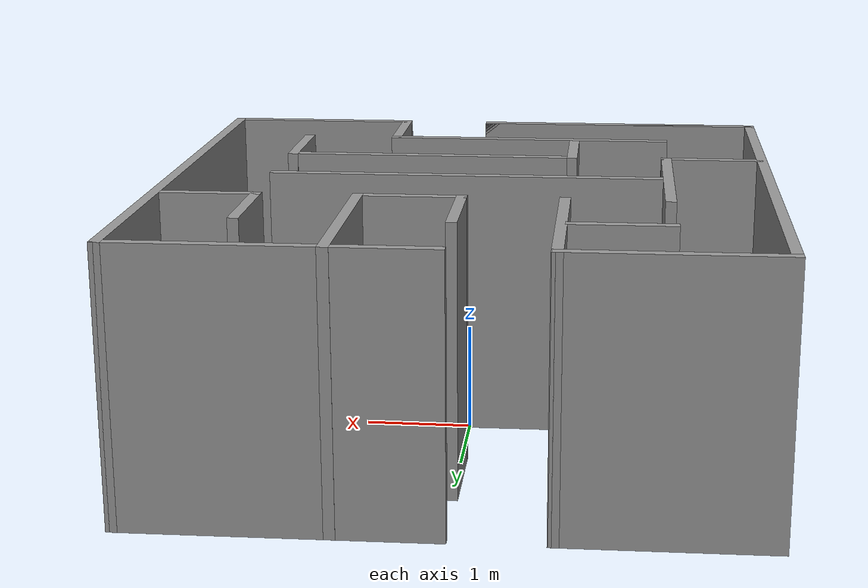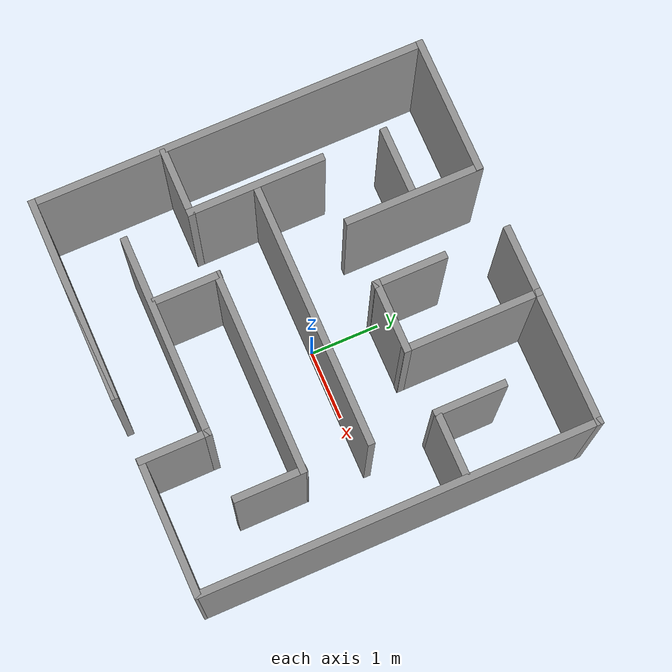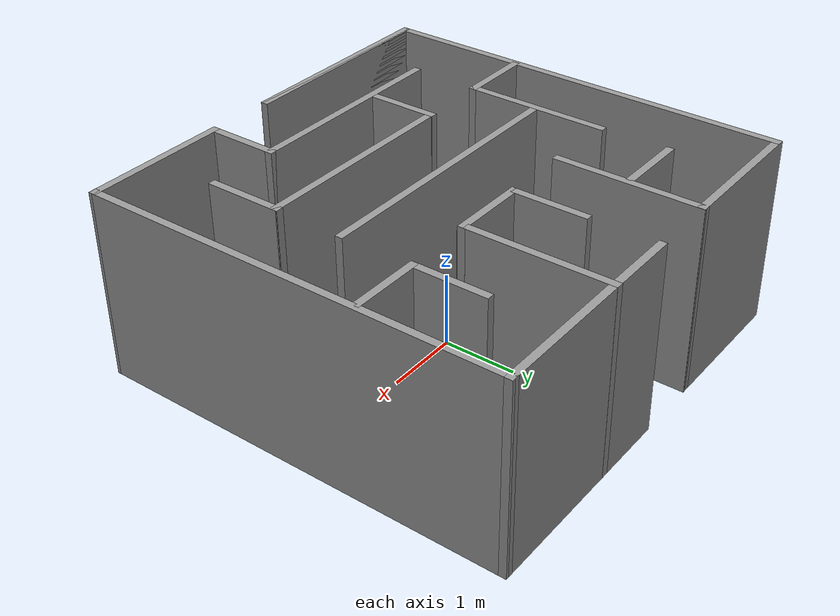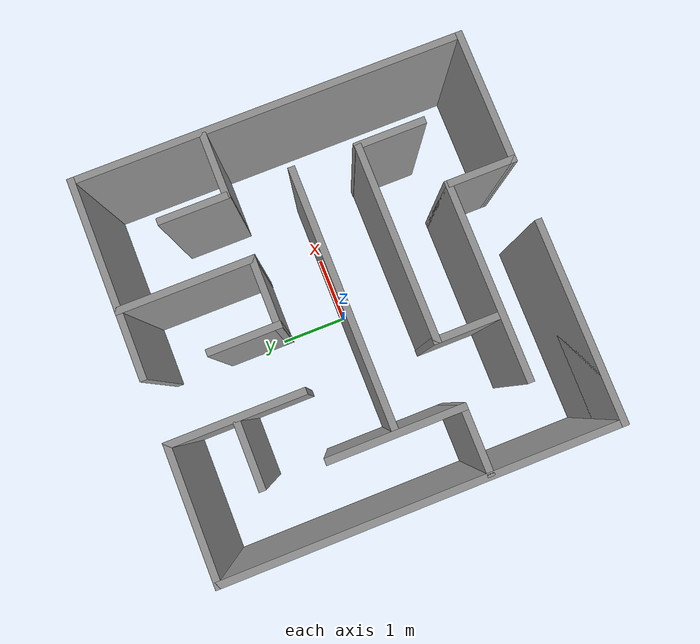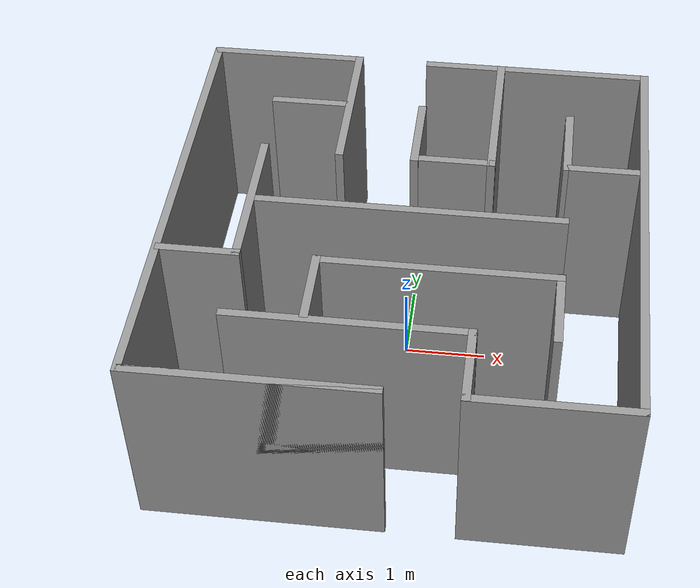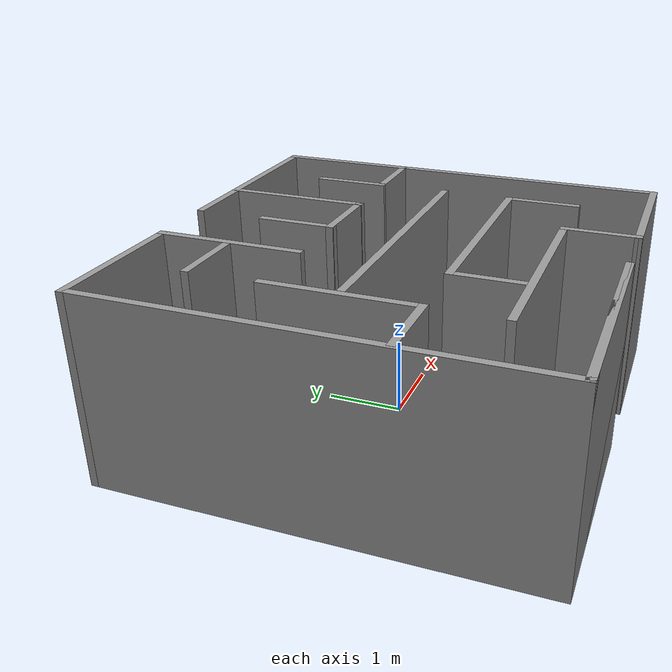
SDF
<?xml version='1.0'?>
<sdf version='1.7'>
  <model name='maze6x6'>
    <pose>-0.00496 0.002935 0 0 -0 0</pose>
    <link name='Wall_10'>
      <collision name='Wall_10_Collision'>
        <geometry>
          <box>
            <size>1.9527 0.1 2.5</size>
          </box>
        </geometry>
        <pose>0 0 1.25 0 -0 0</pose>
      </collision>
      <visual name='Wall_10_Visual'>
        <pose>0 0 1.25 0 -0 0</pose>
        <geometry>
          <box>
            <size>1.9527 0.1 2.5</size>
          </box>
        </geometry>
        <material>
          <script>
            <uri>file://media/materials/scripts/gazebo.material</uri>
            <name>Gazebo/Grey</name>
          </script>
          <ambient>1 1 1 1</ambient>
        </material>
        <meta>
          <layer>0</layer>
        </meta>
      </visual>
      <pose>-1.84869 2.77207 0 0 -0 3.14159</pose>
    </link>
    <link name='Wall_12'>
      <collision name='Wall_12_Collision'>
        <geometry>
          <box>
            <size>1.95424 0.1 2.5</size>
          </box>
        </geometry>
        <pose>0 0 1.25 0 -0 0</pose>
      </collision>
      <visual name='Wall_12_Visual'>
        <pose>0 0 1.25 0 -0 0</pose>
        <geometry>
          <box>
            <size>1.95424 0.1 2.5</size>
          </box>
        </geometry>
        <material>
          <script>
            <uri>file://media/materials/scripts/gazebo.material</uri>
            <name>Gazebo/Grey</name>
          </script>
          <ambient>1 1 1 1</ambient>
        </material>
        <meta>
          <layer>0</layer>
        </meta>
      </visual>
      <pose>-0.915905 1.84495 0 0 -0 -1.57095</pose>
    </link>
    <link name='Wall_14'>
      <collision name='Wall_14_Collision'>
        <geometry>
          <box>
            <size>0.95 0.1 2.5</size>
          </box>
        </geometry>
        <pose>0 0 1.25 0 -0 0</pose>
      </collision>
      <visual name='Wall_14_Visual'>
        <pose>0 0 1.25 0 -0 0</pose>
        <geometry>
          <box>
            <size>0.95 0.1 2.5</size>
          </box>
        </geometry>
        <material>
          <script>
            <uri>file://media/materials/scripts/gazebo.material</uri>
            <name>Gazebo/Grey</name>
          </script>
          <ambient>1 1 1 1</ambient>
        </material>
        <meta>
          <layer>0</layer>
        </meta>
      </visual>
      <pose>-1.42324 1.84142 0 0 -0 0</pose>
    </link>
    <link name='Wall_17'>
      <collision name='Wall_17_Collision'>
        <geometry>
          <box>
            <size>0.988326 0.1 2.5</size>
          </box>
        </geometry>
        <pose>0 0 1.25 0 -0 0</pose>
      </collision>
      <visual name='Wall_17_Visual'>
        <pose>0 0 1.25 0 -0 0</pose>
        <geometry>
          <box>
            <size>0.988326 0.1 2.5</size>
          </box>
        </geometry>
        <material>
          <script>
            <uri>file://media/materials/scripts/gazebo.material</uri>
            <name>Gazebo/Grey</name>
          </script>
          <ambient>1 1 1 1</ambient>
        </material>
        <meta>
          <layer>0</layer>
        </meta>
      </visual>
      <pose>-2.29104 -0.926935 0 0 -0 3.14159</pose>
    </link>
    <link name='Wall_19'>
      <collision name='Wall_19_Collision'>
        <geometry>
          <box>
            <size>1.95244 0.1 2.5</size>
          </box>
        </geometry>
        <pose>0 0 1.25 0 -0 0</pose>
      </collision>
      <visual name='Wall_19_Visual'>
        <pose>0 0 1.25 0 -0 0</pose>
        <geometry>
          <box>
            <size>1.95244 0.1 2.5</size>
          </box>
        </geometry>
        <material>
          <script>
            <uri>file://media/materials/scripts/gazebo.material</uri>
            <name>Gazebo/Grey</name>
          </script>
          <ambient>1 1 1 1</ambient>
        </material>
        <meta>
          <layer>0</layer>
        </meta>
      </visual>
      <pose>-1.84704 -0.000713 0 0 -0 -1.5708</pose>
    </link>
    <link name='Wall_22'>
      <collision name='Wall_22_Collision'>
        <geometry>
          <box>
            <size>3.7 0.1 2.5</size>
          </box>
        </geometry>
        <pose>0 0 1.25 0 -0 0</pose>
      </collision>
      <visual name='Wall_22_Visual'>
        <pose>0 0 1.25 0 -0 0</pose>
        <geometry>
          <box>
            <size>3.7 0.1 2.5</size>
          </box>
        </geometry>
        <material>
          <script>
            <uri>file://media/materials/scripts/gazebo.material</uri>
            <name>Gazebo/Grey</name>
          </script>
          <ambient>1 1 1 1</ambient>
        </material>
        <meta>
          <layer>0</layer>
        </meta>
      </visual>
      <pose>0.052899 -0.001935 0 0 -0 3.14159</pose>
    </link>
    <link name='Wall_27'>
      <collision name='Wall_27_Collision'>
        <geometry>
          <box>
            <size>1.04115 0.1 2.5</size>
          </box>
        </geometry>
        <pose>0 0 1.25 0 -0 0</pose>
      </collision>
      <visual name='Wall_27_Visual'>
        <pose>0 0 1.25 0 -0 0</pose>
        <geometry>
          <box>
            <size>1.04115 0.1 2.5</size>
          </box>
        </geometry>
        <material>
          <script>
            <uri>file://media/materials/scripts/gazebo.material</uri>
            <name>Gazebo/Grey</name>
          </script>
          <ambient>1 1 1 1</ambient>
        </material>
        <meta>
          <layer>0</layer>
        </meta>
      </visual>
      <pose>0.00196 1.37849 0 0 -0 -1.5708</pose>
    </link>
    <link name='Wall_29'>
      <collision name='Wall_29_Collision'>
        <geometry>
          <box>
            <size>1.03438 0.1 2.5</size>
          </box>
        </geometry>
        <pose>0 0 1.25 0 -0 0</pose>
      </collision>
      <visual name='Wall_29_Visual'>
        <pose>0 0 1.25 0 -0 0</pose>
        <geometry>
          <box>
            <size>1.03438 0.1 2.5</size>
          </box>
        </geometry>
        <material>
          <script>
            <uri>file://media/materials/scripts/gazebo.material</uri>
            <name>Gazebo/Grey</name>
          </script>
          <ambient>1 1 1 1</ambient>
        </material>
        <meta>
          <layer>0</layer>
        </meta>
      </visual>
      <pose>0.46896 0.91449 0 0 -0 3.14159</pose>
    </link>
    <link name='Wall_31'>
      <collision name='Wall_31_Collision'>
        <geometry>
          <box>
            <size>1.96315 0.1 2.5</size>
          </box>
        </geometry>
        <pose>0 0 1.25 0 -0 0</pose>
      </collision>
      <visual name='Wall_31_Visual'>
        <pose>0 0 1.25 0 -0 0</pose>
        <geometry>
          <box>
            <size>1.96315 0.1 2.5</size>
          </box>
        </geometry>
        <material>
          <script>
            <uri>file://media/materials/scripts/gazebo.material</uri>
            <name>Gazebo/Grey</name>
          </script>
          <ambient>1 1 1 1</ambient>
        </material>
        <meta>
          <layer>0</layer>
        </meta>
      </visual>
      <pose>0.93596 1.83949 0 0 -0 1.5708</pose>
    </link>
    <link name='Wall_33'>
      <collision name='Wall_33_Collision'>
        <geometry>
          <box>
            <size>2.8608 0.1 2.5</size>
          </box>
        </geometry>
        <pose>0 0 1.25 0 -0 0</pose>
      </collision>
      <visual name='Wall_33_Visual'>
        <pose>0 0 1.25 0 -0 0</pose>
        <geometry>
          <box>
            <size>2.8608 0.1 2.5</size>
          </box>
        </geometry>
        <material>
          <script>
            <uri>file://media/materials/scripts/gazebo.material</uri>
            <name>Gazebo/Grey</name>
          </script>
          <ambient>1 1 1 1</ambient>
        </material>
        <meta>
          <layer>0</layer>
        </meta>
      </visual>
      <pose>1.39456 2.76996 0 0 -0 7.4e-05</pose>
    </link>
    <link name='Wall_36'>
      <collision name='Wall_36_Collision'>
        <geometry>
          <box>
            <size>5.63408 0.1 2.5</size>
          </box>
        </geometry>
        <pose>0 0 1.25 0 -0 0</pose>
      </collision>
      <visual name='Wall_36_Visual'>
        <pose>0 0 1.25 0 -0 0</pose>
        <geometry>
          <box>
            <size>5.63408 0.1 2.5</size>
          </box>
        </geometry>
        <material>
          <script>
            <uri>file://media/materials/scripts/gazebo.material</uri>
            <name>Gazebo/Grey</name>
          </script>
          <ambient>1 1 1 1</ambient>
        </material>
        <meta>
          <layer>0</layer>
        </meta>
      </visual>
      <pose>2.77496 0.003023 0 0 -0 1.5708</pose>
    </link>
    <link name='Wall_38'>
      <collision name='Wall_38_Collision'>
        <geometry>
          <box>
            <size>0.960353 0.1 2.5</size>
          </box>
        </geometry>
        <pose>0 0 1.25 0 -0 0</pose>
      </collision>
      <visual name='Wall_38_Visual'>
        <pose>0 0 1.25 0 -0 0</pose>
        <geometry>
          <box>
            <size>0.960353 0.1 2.5</size>
          </box>
        </geometry>
        <material>
          <script>
            <uri>file://media/materials/scripts/gazebo.material</uri>
            <name>Gazebo/Grey</name>
          </script>
          <ambient>1 1 1 1</ambient>
        </material>
        <meta>
          <layer>0</layer>
        </meta>
      </visual>
      <pose>2.28678 0.933065 0 0 -0 0</pose>
    </link>
    <link name='Wall_4'>
      <collision name='Wall_4_Collision'>
        <geometry>
          <box>
            <size>2.88787 0.1 2.5</size>
          </box>
        </geometry>
        <pose>0 0 1.25 0 -0 0</pose>
      </collision>
      <visual name='Wall_4_Visual'>
        <pose>0 0 1.25 0 -0 0</pose>
        <geometry>
          <box>
            <size>2.88787 0.1 2.5</size>
          </box>
        </geometry>
        <material>
          <script>
            <uri>file://media/materials/scripts/gazebo.material</uri>
            <name>Gazebo/Grey</name>
          </script>
          <ambient>1 1 1 1</ambient>
        </material>
        <meta>
          <layer>0</layer>
        </meta>
      </visual>
      <pose>-1.38104 -2.76694 0 0 -0 3.14159</pose>
    </link>
    <link name='Wall_40'>
      <collision name='Wall_40_Collision'>
        <geometry>
          <box>
            <size>1.02058 0.1 2.5</size>
          </box>
        </geometry>
        <pose>0 0 1.25 0 -0 0</pose>
      </collision>
      <visual name='Wall_40_Visual'>
        <pose>0 0 1.25 0 -0 0</pose>
        <geometry>
          <box>
            <size>1.02058 0.1 2.5</size>
          </box>
        </geometry>
        <material>
          <script>
            <uri>file://media/materials/scripts/gazebo.material</uri>
            <name>Gazebo/Grey</name>
          </script>
          <ambient>1 1 1 1</ambient>
        </material>
        <meta>
          <layer>0</layer>
        </meta>
      </visual>
      <pose>1.85215 1.39335 0 0 -0 -1.5705</pose>
    </link>
    <link name='Wall_42'>
      <collision name='Wall_42_Collision'>
        <geometry>
          <box>
            <size>2.888 0.1 2.5</size>
          </box>
        </geometry>
        <pose>0 0 1.25 0 -0 0</pose>
      </collision>
      <visual name='Wall_42_Visual'>
        <pose>0 0 1.25 0 -0 0</pose>
        <geometry>
          <box>
            <size>2.888 0.1 2.5</size>
          </box>
        </geometry>
        <material>
          <script>
            <uri>file://media/materials/scripts/gazebo.material</uri>
            <name>Gazebo/Grey</name>
          </script>
          <ambient>1 1 1 1</ambient>
        </material>
        <meta>
          <layer>0</layer>
        </meta>
      </visual>
      <pose>-1.38104 -2.76694 0 0 -0 3.14159</pose>
    </link>
    <link name='Wall_44'>
      <collision name='Wall_44_Collision'>
        <geometry>
          <box>
            <size>2.855 0.1 2.5</size>
          </box>
        </geometry>
        <pose>0 0 1.25 0 -0 0</pose>
      </collision>
      <visual name='Wall_44_Visual'>
        <pose>0 0 1.25 0 -0 0</pose>
        <geometry>
          <box>
            <size>2.855 0.1 2.5</size>
          </box>
        </geometry>
        <material>
          <script>
            <uri>file://media/materials/scripts/gazebo.material</uri>
            <name>Gazebo/Grey</name>
          </script>
          <ambient>1 1 1 1</ambient>
        </material>
        <meta>
          <layer>0</layer>
        </meta>
      </visual>
      <pose>-0.44854 -1.85494 0 0 -0 0</pose>
    </link>
    <link name='Wall_46'>
      <collision name='Wall_46_Collision'>
        <geometry>
          <box>
            <size>1.01208 0.1 2.5</size>
          </box>
        </geometry>
        <pose>0 0 1.25 0 -0 0</pose>
      </collision>
      <visual name='Wall_46_Visual'>
        <pose>0 0 1.25 0 -0 0</pose>
        <geometry>
          <box>
            <size>1.01208 0.1 2.5</size>
          </box>
        </geometry>
        <material>
          <script>
            <uri>file://media/materials/scripts/gazebo.material</uri>
            <name>Gazebo/Grey</name>
          </script>
          <ambient>1 1 1 1</ambient>
        </material>
        <meta>
          <layer>0</layer>
        </meta>
      </visual>
      <pose>0.92896 -2.31098 0 0 -0 1.5708</pose>
    </link>
    <link name='Wall_48'>
      <collision name='Wall_48_Collision'>
        <geometry>
          <box>
            <size>0.96315 0.1 2.5</size>
          </box>
        </geometry>
        <pose>0 0 1.25 0 -0 0</pose>
      </collision>
      <visual name='Wall_48_Visual'>
        <pose>0 0 1.25 0 -0 0</pose>
        <geometry>
          <box>
            <size>0.96315 0.1 2.5</size>
          </box>
        </geometry>
        <material>
          <script>
            <uri>file://media/materials/scripts/gazebo.material</uri>
            <name>Gazebo/Grey</name>
          </script>
          <ambient>1 1 1 1</ambient>
        </material>
        <meta>
          <layer>0</layer>
        </meta>
      </visual>
      <pose>-0.92504 -1.35736 0 0 -0 1.5708</pose>
    </link>
    <link name='Wall_51'>
      <collision name='Wall_51_Collision'>
        <geometry>
          <box>
            <size>1.02258 0.1 2.5</size>
          </box>
        </geometry>
        <pose>0 0 1.25 0 -0 0</pose>
      </collision>
      <visual name='Wall_51_Visual'>
        <pose>0 0 1.25 0 -0 0</pose>
        <geometry>
          <box>
            <size>1.02258 0.1 2.5</size>
          </box>
        </geometry>
        <material>
          <script>
            <uri>file://media/materials/scripts/gazebo.material</uri>
            <name>Gazebo/Grey</name>
          </script>
          <ambient>1 1 1 1</ambient>
        </material>
        <meta>
          <layer>0</layer>
        </meta>
      </visual>
      <pose>1.85004 -1.38707 0 0 -0 1.57096</pose>
    </link>
    <link name='Wall_54'>
      <collision name='Wall_54_Collision'>
        <geometry>
          <box>
            <size>2.875 0.1 2.5</size>
          </box>
        </geometry>
        <pose>0 0 1.25 0 -0 0</pose>
      </collision>
      <visual name='Wall_54_Visual'>
        <pose>0 0 1.25 0 -0 0</pose>
        <geometry>
          <box>
            <size>2.875 0.1 2.5</size>
          </box>
        </geometry>
        <material>
          <script>
            <uri>file://media/materials/scripts/gazebo.material</uri>
            <name>Gazebo/Grey</name>
          </script>
          <ambient>1 1 1 1</ambient>
        </material>
        <meta>
          <layer>0</layer>
        </meta>
      </visual>
      <pose>0.46246 -0.93236 0 0 -0 0</pose>
    </link>
    <link name='Wall_56'>
      <collision name='Wall_56_Collision'>
        <geometry>
          <box>
            <size>1.946 0.1 2.5</size>
          </box>
        </geometry>
        <pose>0 0 1.25 0 -0 0</pose>
      </collision>
      <visual name='Wall_56_Visual'>
        <pose>0 0 1.25 0 -0 0</pose>
        <geometry>
          <box>
            <size>1.946 0.1 2.5</size>
          </box>
        </geometry>
        <material>
          <script>
            <uri>file://media/materials/scripts/gazebo.material</uri>
            <name>Gazebo/Grey</name>
          </script>
          <ambient>1 1 1 1</ambient>
        </material>
        <meta>
          <layer>0</layer>
        </meta>
      </visual>
      <pose>1.85196 -2.77049 0 0 -0 0.001625</pose>
    </link>
    <link name='Wall_7'>
      <collision name='Wall_7_Collision'>
        <geometry>
          <box>
            <size>5.639 0.1 2.5</size>
          </box>
        </geometry>
        <pose>0 0 1.25 0 -0 0</pose>
      </collision>
      <visual name='Wall_7_Visual'>
        <pose>0 0 1.25 0 -0 0</pose>
        <geometry>
          <box>
            <size>5.639 0.1 2.5</size>
          </box>
        </geometry>
        <material>
          <script>
            <uri>file://media/materials/scripts/gazebo.material</uri>
            <name>Gazebo/Grey</name>
          </script>
          <ambient>1 1 1 1</ambient>
        </material>
        <meta>
          <layer>0</layer>
        </meta>
      </visual>
      <pose>-2.77504 0.002565 0 0 -0 -1.5708</pose>
    </link>
    <static>1</static>
  </model>
</sdf>
